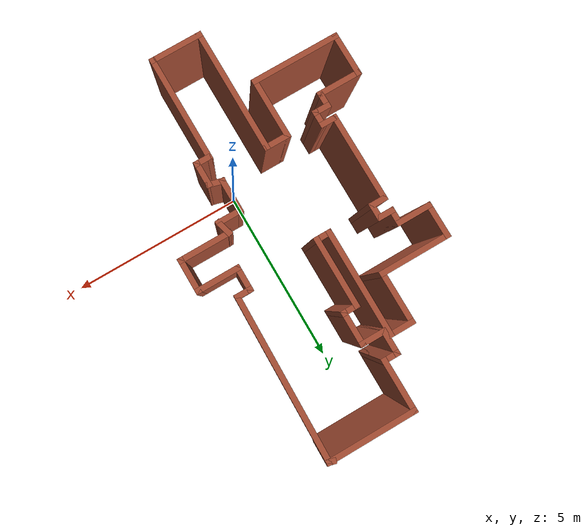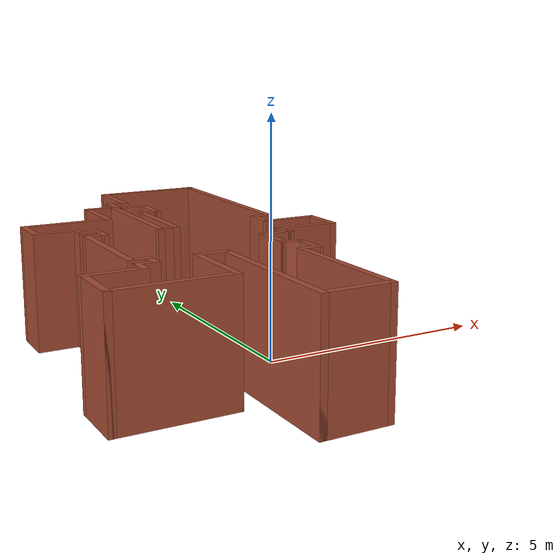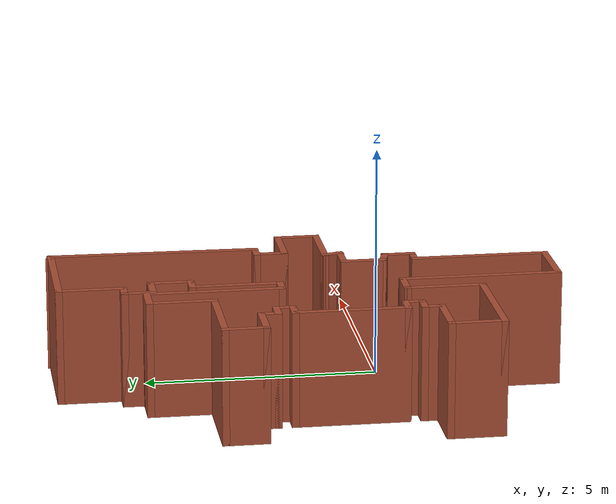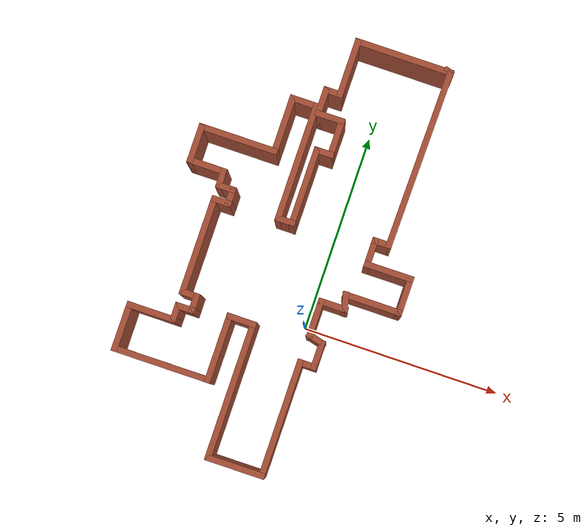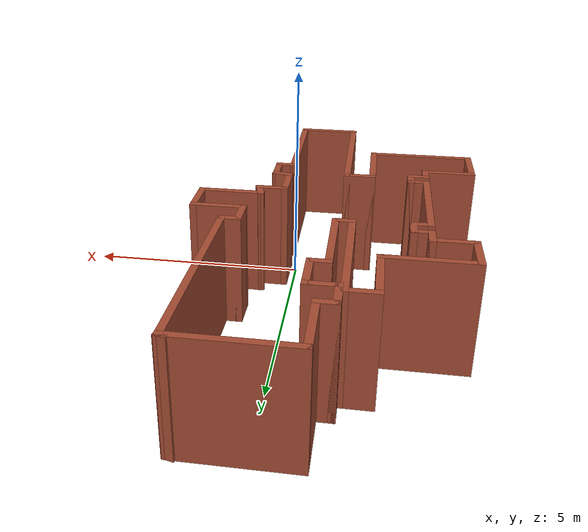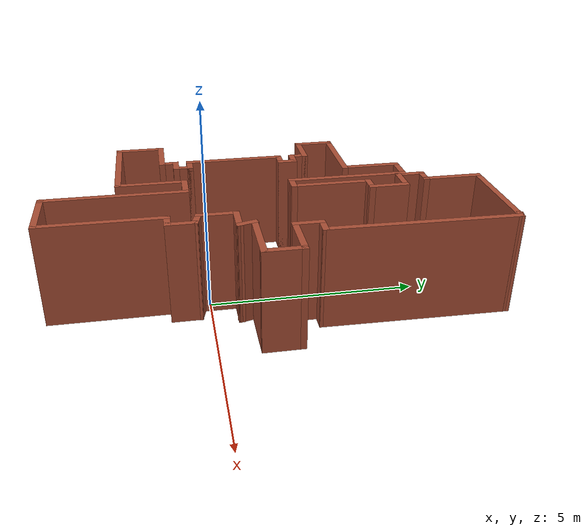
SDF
<?xml version='1.0'?>
<sdf version='1.6'>
  <model name='map_56'>
    <pose frame=''>-1.02847 1.59781 0 0 -0 0</pose>
    <link name='Wall_10'>
      <collision name='Wall_10_Collision'>
        <geometry>
          <box>
            <size>2 0.15 2.5</size>
          </box>
        </geometry>
        <pose frame=''>0 0 1.25 0 -0 0</pose>
      </collision>
      <visual name='Wall_10_Visual'>
        <pose frame=''>0 0 1.25 0 -0 0</pose>
        <geometry>
          <box>
            <size>2 0.15 2.5</size>
          </box>
        </geometry>
        <material>
          <script>
            <uri>file://media/materials/scripts/gazebo.material</uri>
            <name>Gazebo/Bricks</name>
          </script>
          <ambient>1 1 1 1</ambient>
        </material>
        <meta>
          <layer>0</layer>
        </meta>
      </visual>
      <pose frame=''>-0.03567 1.55363 0 0 -0 -1.5708</pose>
    </link>
    <link name='Wall_11'>
      <collision name='Wall_11_Collision'>
        <geometry>
          <box>
            <size>0.5 0.15 2.5</size>
          </box>
        </geometry>
        <pose frame=''>0 0 1.25 0 -0 0</pose>
      </collision>
      <visual name='Wall_11_Visual'>
        <pose frame=''>0 0 1.25 0 -0 0</pose>
        <geometry>
          <box>
            <size>0.5 0.15 2.5</size>
          </box>
        </geometry>
        <material>
          <script>
            <uri>file://media/materials/scripts/gazebo.material</uri>
            <name>Gazebo/Bricks</name>
          </script>
          <ambient>1 1 1 1</ambient>
        </material>
        <meta>
          <layer>0</layer>
        </meta>
      </visual>
      <pose frame=''>-0.21067 0.628631 0 0 -0 3.14159</pose>
    </link>
    <link name='Wall_14'>
      <collision name='Wall_14_Collision'>
        <geometry>
          <box>
            <size>3 0.15 2.5</size>
          </box>
        </geometry>
        <pose frame=''>0 0 1.25 0 -0 0</pose>
      </collision>
      <visual name='Wall_14_Visual'>
        <pose frame=''>0 0 1.25 0 -0 0</pose>
        <geometry>
          <box>
            <size>3 0.15 2.5</size>
          </box>
        </geometry>
        <material>
          <script>
            <uri>file://media/materials/scripts/gazebo.material</uri>
            <name>Gazebo/Bricks</name>
          </script>
          <ambient>1 1 1 1</ambient>
        </material>
        <meta>
          <layer>0</layer>
        </meta>
      </visual>
      <pose frame=''>-0.38567 2.05363 0 0 -0 1.5708</pose>
    </link>
    <link name='Wall_15'>
      <collision name='Wall_15_Collision'>
        <geometry>
          <box>
            <size>0.75 0.15 2.5</size>
          </box>
        </geometry>
        <pose frame=''>0 0 1.25 0 -0 0</pose>
      </collision>
      <visual name='Wall_15_Visual'>
        <pose frame=''>0 0 1.25 0 -0 0</pose>
        <geometry>
          <box>
            <size>0.75 0.15 2.5</size>
          </box>
        </geometry>
        <material>
          <script>
            <uri>file://media/materials/scripts/gazebo.material</uri>
            <name>Gazebo/Bricks</name>
          </script>
          <ambient>1 1 1 1</ambient>
        </material>
        <meta>
          <layer>0</layer>
        </meta>
      </visual>
      <pose frame=''>-0.68567 3.47863 0 0 -0 3.14159</pose>
    </link>
    <link name='Wall_16'>
      <collision name='Wall_16_Collision'>
        <geometry>
          <box>
            <size>1.5 0.15 2.5</size>
          </box>
        </geometry>
        <pose frame=''>0 0 1.25 0 -0 0</pose>
      </collision>
      <visual name='Wall_16_Visual'>
        <pose frame=''>0 0 1.25 0 -0 0</pose>
        <geometry>
          <box>
            <size>1.5 0.15 2.5</size>
          </box>
        </geometry>
        <material>
          <script>
            <uri>file://media/materials/scripts/gazebo.material</uri>
            <name>Gazebo/Bricks</name>
          </script>
          <ambient>1 1 1 1</ambient>
        </material>
        <meta>
          <layer>0</layer>
        </meta>
      </visual>
      <pose frame=''>-0.98567 2.80363 0 0 -0 -1.5708</pose>
    </link>
    <link name='Wall_17'>
      <collision name='Wall_17_Collision'>
        <geometry>
          <box>
            <size>2 0.15 2.5</size>
          </box>
        </geometry>
        <pose frame=''>0 0 1.25 0 -0 0</pose>
      </collision>
      <visual name='Wall_17_Visual'>
        <pose frame=''>0 0 1.25 0 -0 0</pose>
        <geometry>
          <box>
            <size>2 0.15 2.5</size>
          </box>
        </geometry>
        <material>
          <script>
            <uri>file://media/materials/scripts/gazebo.material</uri>
            <name>Gazebo/Bricks</name>
          </script>
          <ambient>1 1 1 1</ambient>
        </material>
        <meta>
          <layer>0</layer>
        </meta>
      </visual>
      <pose frame=''>-1.91067 2.12863 0 0 -0 3.14159</pose>
    </link>
    <link name='Wall_18'>
      <collision name='Wall_18_Collision'>
        <geometry>
          <box>
            <size>1 0.15 2.5</size>
          </box>
        </geometry>
        <pose frame=''>0 0 1.25 0 -0 0</pose>
      </collision>
      <visual name='Wall_18_Visual'>
        <pose frame=''>0 0 1.25 0 -0 0</pose>
        <geometry>
          <box>
            <size>1 0.15 2.5</size>
          </box>
        </geometry>
        <material>
          <script>
            <uri>file://media/materials/scripts/gazebo.material</uri>
            <name>Gazebo/Bricks</name>
          </script>
          <ambient>1 1 1 1</ambient>
        </material>
        <meta>
          <layer>0</layer>
        </meta>
      </visual>
      <pose frame=''>-2.83567 1.70363 0 0 -0 -1.5708</pose>
    </link>
    <link name='Wall_22'>
      <collision name='Wall_22_Collision'>
        <geometry>
          <box>
            <size>1 0.15 2.5</size>
          </box>
        </geometry>
        <pose frame=''>0 0 1.25 0 -0 0</pose>
      </collision>
      <visual name='Wall_22_Visual'>
        <pose frame=''>0 0 1.25 0 -0 0</pose>
        <geometry>
          <box>
            <size>1 0.15 2.5</size>
          </box>
        </geometry>
        <material>
          <script>
            <uri>file://media/materials/scripts/gazebo.material</uri>
            <name>Gazebo/Bricks</name>
          </script>
          <ambient>1 1 1 1</ambient>
        </material>
        <meta>
          <layer>0</layer>
        </meta>
      </visual>
      <pose frame=''>-2.41067 1.27863 0 0 -0 0</pose>
    </link>
    <link name='Wall_23'>
      <collision name='Wall_23_Collision'>
        <geometry>
          <box>
            <size>0.5 0.15 2.5</size>
          </box>
        </geometry>
        <pose frame=''>0 0 1.25 0 -0 0</pose>
      </collision>
      <visual name='Wall_23_Visual'>
        <pose frame=''>0 0 1.25 0 -0 0</pose>
        <geometry>
          <box>
            <size>0.5 0.15 2.5</size>
          </box>
        </geometry>
        <material>
          <script>
            <uri>file://media/materials/scripts/gazebo.material</uri>
            <name>Gazebo/Bricks</name>
          </script>
          <ambient>1 1 1 1</ambient>
        </material>
        <meta>
          <layer>0</layer>
        </meta>
      </visual>
      <pose frame=''>-1.98567 1.10363 0 0 -0 -1.5708</pose>
    </link>
    <link name='Wall_24'>
      <collision name='Wall_24_Collision'>
        <geometry>
          <box>
            <size>0.5 0.15 2.5</size>
          </box>
        </geometry>
        <pose frame=''>0 0 1.25 0 -0 0</pose>
      </collision>
      <visual name='Wall_24_Visual'>
        <pose frame=''>0 0 1.25 0 -0 0</pose>
        <geometry>
          <box>
            <size>0.5 0.15 2.5</size>
          </box>
        </geometry>
        <material>
          <script>
            <uri>file://media/materials/scripts/gazebo.material</uri>
            <name>Gazebo/Bricks</name>
          </script>
          <ambient>1 1 1 1</ambient>
        </material>
        <meta>
          <layer>0</layer>
        </meta>
      </visual>
      <pose frame=''>-1.81067 0.928631 0 0 -0 0</pose>
    </link>
    <link name='Wall_25'>
      <collision name='Wall_25_Collision'>
        <geometry>
          <box>
            <size>0.5 0.15 2.5</size>
          </box>
        </geometry>
        <pose frame=''>0 0 1.25 0 -0 0</pose>
      </collision>
      <visual name='Wall_25_Visual'>
        <pose frame=''>0 0 1.25 0 -0 0</pose>
        <geometry>
          <box>
            <size>0.5 0.15 2.5</size>
          </box>
        </geometry>
        <material>
          <script>
            <uri>file://media/materials/scripts/gazebo.material</uri>
            <name>Gazebo/Bricks</name>
          </script>
          <ambient>1 1 1 1</ambient>
        </material>
        <meta>
          <layer>0</layer>
        </meta>
      </visual>
      <pose frame=''>-1.63567 0.753631 0 0 -0 -1.5708</pose>
    </link>
    <link name='Wall_26'>
      <collision name='Wall_26_Collision'>
        <geometry>
          <box>
            <size>0.5 0.15 2.5</size>
          </box>
        </geometry>
        <pose frame=''>0 0 1.25 0 -0 0</pose>
      </collision>
      <visual name='Wall_26_Visual'>
        <pose frame=''>0 0 1.25 0 -0 0</pose>
        <geometry>
          <box>
            <size>0.5 0.15 2.5</size>
          </box>
        </geometry>
        <material>
          <script>
            <uri>file://media/materials/scripts/gazebo.material</uri>
            <name>Gazebo/Bricks</name>
          </script>
          <ambient>1 1 1 1</ambient>
        </material>
        <meta>
          <layer>0</layer>
        </meta>
      </visual>
      <pose frame=''>-1.81067 0.578631 0 0 -0 3.14159</pose>
    </link>
    <link name='Wall_27'>
      <collision name='Wall_27_Collision'>
        <geometry>
          <box>
            <size>2.5 0.15 2.5</size>
          </box>
        </geometry>
        <pose frame=''>0 0 1.25 0 -0 0</pose>
      </collision>
      <visual name='Wall_27_Visual'>
        <pose frame=''>0 0 1.25 0 -0 0</pose>
        <geometry>
          <box>
            <size>2.5 0.15 2.5</size>
          </box>
        </geometry>
        <material>
          <script>
            <uri>file://media/materials/scripts/gazebo.material</uri>
            <name>Gazebo/Bricks</name>
          </script>
          <ambient>1 1 1 1</ambient>
        </material>
        <meta>
          <layer>0</layer>
        </meta>
      </visual>
      <pose frame=''>-1.98567 -0.596369 0 0 -0 -1.5708</pose>
    </link>
    <link name='Wall_28'>
      <collision name='Wall_28_Collision'>
        <geometry>
          <box>
            <size>0.5 0.15 2.5</size>
          </box>
        </geometry>
        <pose frame=''>0 0 1.25 0 -0 0</pose>
      </collision>
      <visual name='Wall_28_Visual'>
        <pose frame=''>0 0 1.25 0 -0 0</pose>
        <geometry>
          <box>
            <size>0.5 0.15 2.5</size>
          </box>
        </geometry>
        <material>
          <script>
            <uri>file://media/materials/scripts/gazebo.material</uri>
            <name>Gazebo/Bricks</name>
          </script>
          <ambient>1 1 1 1</ambient>
        </material>
        <meta>
          <layer>0</layer>
        </meta>
      </visual>
      <pose frame=''>-1.81067 -1.77137 0 0 -0 0</pose>
    </link>
    <link name='Wall_29'>
      <collision name='Wall_29_Collision'>
        <geometry>
          <box>
            <size>0.5 0.15 2.5</size>
          </box>
        </geometry>
        <pose frame=''>0 0 1.25 0 -0 0</pose>
      </collision>
      <visual name='Wall_29_Visual'>
        <pose frame=''>0 0 1.25 0 -0 0</pose>
        <geometry>
          <box>
            <size>0.5 0.15 2.5</size>
          </box>
        </geometry>
        <material>
          <script>
            <uri>file://media/materials/scripts/gazebo.material</uri>
            <name>Gazebo/Bricks</name>
          </script>
          <ambient>1 1 1 1</ambient>
        </material>
        <meta>
          <layer>0</layer>
        </meta>
      </visual>
      <pose frame=''>-1.63567 -1.94637 0 0 -0 -1.5708</pose>
    </link>
    <link name='Wall_3'>
      <collision name='Wall_3_Collision'>
        <geometry>
          <box>
            <size>2.5 0.15 2.5</size>
          </box>
        </geometry>
        <pose frame=''>0 0 1.25 0 -0 0</pose>
      </collision>
      <visual name='Wall_3_Visual'>
        <pose frame=''>0 0 1.25 0 -0 0</pose>
        <geometry>
          <box>
            <size>2.5 0.15 2.5</size>
          </box>
        </geometry>
        <material>
          <script>
            <uri>file://media/materials/scripts/gazebo.material</uri>
            <name>Gazebo/Bricks</name>
          </script>
          <ambient>1 1 1 1</ambient>
        </material>
        <meta>
          <layer>0</layer>
        </meta>
      </visual>
      <pose frame=''>1.23933 5.27863 0 0 -0 3.14159</pose>
    </link>
    <link name='Wall_30'>
      <collision name='Wall_30_Collision'>
        <geometry>
          <box>
            <size>0.5 0.15 2.5</size>
          </box>
        </geometry>
        <pose frame=''>0 0 1.25 0 -0 0</pose>
      </collision>
      <visual name='Wall_30_Visual'>
        <pose frame=''>0 0 1.25 0 -0 0</pose>
        <geometry>
          <box>
            <size>0.5 0.15 2.5</size>
          </box>
        </geometry>
        <material>
          <script>
            <uri>file://media/materials/scripts/gazebo.material</uri>
            <name>Gazebo/Bricks</name>
          </script>
          <ambient>1 1 1 1</ambient>
        </material>
        <meta>
          <layer>0</layer>
        </meta>
      </visual>
      <pose frame=''>-1.81067 -2.12137 0 0 -0 3.14159</pose>
    </link>
    <link name='Wall_31'>
      <collision name='Wall_31_Collision'>
        <geometry>
          <box>
            <size>0.5 0.15 2.5</size>
          </box>
        </geometry>
        <pose frame=''>0 0 1.25 0 -0 0</pose>
      </collision>
      <visual name='Wall_31_Visual'>
        <pose frame=''>0 0 1.25 0 -0 0</pose>
        <geometry>
          <box>
            <size>0.5 0.15 2.5</size>
          </box>
        </geometry>
        <material>
          <script>
            <uri>file://media/materials/scripts/gazebo.material</uri>
            <name>Gazebo/Bricks</name>
          </script>
          <ambient>1 1 1 1</ambient>
        </material>
        <meta>
          <layer>0</layer>
        </meta>
      </visual>
      <pose frame=''>-1.98567 -2.29637 0 0 -0 -1.5708</pose>
    </link>
    <link name='Wall_32'>
      <collision name='Wall_32_Collision'>
        <geometry>
          <box>
            <size>1.25 0.15 2.5</size>
          </box>
        </geometry>
        <pose frame=''>0 0 1.25 0 -0 0</pose>
      </collision>
      <visual name='Wall_32_Visual'>
        <pose frame=''>0 0 1.25 0 -0 0</pose>
        <geometry>
          <box>
            <size>1.25 0.15 2.5</size>
          </box>
        </geometry>
        <material>
          <script>
            <uri>file://media/materials/scripts/gazebo.material</uri>
            <name>Gazebo/Bricks</name>
          </script>
          <ambient>1 1 1 1</ambient>
        </material>
        <meta>
          <layer>0</layer>
        </meta>
      </visual>
      <pose frame=''>-2.53567 -2.47137 0 0 -0 3.14159</pose>
    </link>
    <link name='Wall_33'>
      <collision name='Wall_33_Collision'>
        <geometry>
          <box>
            <size>1.25 0.15 2.5</size>
          </box>
        </geometry>
        <pose frame=''>0 0 1.25 0 -0 0</pose>
      </collision>
      <visual name='Wall_33_Visual'>
        <pose frame=''>0 0 1.25 0 -0 0</pose>
        <geometry>
          <box>
            <size>1.25 0.15 2.5</size>
          </box>
        </geometry>
        <material>
          <script>
            <uri>file://media/materials/scripts/gazebo.material</uri>
            <name>Gazebo/Bricks</name>
          </script>
          <ambient>1 1 1 1</ambient>
        </material>
        <meta>
          <layer>0</layer>
        </meta>
      </visual>
      <pose frame=''>-3.08567 -3.02137 0 0 -0 -1.5708</pose>
    </link>
    <link name='Wall_34'>
      <collision name='Wall_34_Collision'>
        <geometry>
          <box>
            <size>2.5 0.15 2.5</size>
          </box>
        </geometry>
        <pose frame=''>0 0 1.25 0 -0 0</pose>
      </collision>
      <visual name='Wall_34_Visual'>
        <pose frame=''>0 0 1.25 0 -0 0</pose>
        <geometry>
          <box>
            <size>2.5 0.15 2.5</size>
          </box>
        </geometry>
        <material>
          <script>
            <uri>file://media/materials/scripts/gazebo.material</uri>
            <name>Gazebo/Bricks</name>
          </script>
          <ambient>1 1 1 1</ambient>
        </material>
        <meta>
          <layer>0</layer>
        </meta>
      </visual>
      <pose frame=''>-1.91067 -3.57137 0 0 -0 0</pose>
    </link>
    <link name='Wall_35'>
      <collision name='Wall_35_Collision'>
        <geometry>
          <box>
            <size>1.75 0.15 2.5</size>
          </box>
        </geometry>
        <pose frame=''>0 0 1.25 0 -0 0</pose>
      </collision>
      <visual name='Wall_35_Visual'>
        <pose frame=''>0 0 1.25 0 -0 0</pose>
        <geometry>
          <box>
            <size>1.75 0.15 2.5</size>
          </box>
        </geometry>
        <material>
          <script>
            <uri>file://media/materials/scripts/gazebo.material</uri>
            <name>Gazebo/Bricks</name>
          </script>
          <ambient>1 1 1 1</ambient>
        </material>
        <meta>
          <layer>0</layer>
        </meta>
      </visual>
      <pose frame=''>-0.735669 -2.77137 0 0 -0 1.5708</pose>
    </link>
    <link name='Wall_36'>
      <collision name='Wall_36_Collision'>
        <geometry>
          <box>
            <size>0.75 0.15 2.5</size>
          </box>
        </geometry>
        <pose frame=''>0 0 1.25 0 -0 0</pose>
      </collision>
      <visual name='Wall_36_Visual'>
        <pose frame=''>0 0 1.25 0 -0 0</pose>
        <geometry>
          <box>
            <size>0.75 0.15 2.5</size>
          </box>
        </geometry>
        <material>
          <script>
            <uri>file://media/materials/scripts/gazebo.material</uri>
            <name>Gazebo/Bricks</name>
          </script>
          <ambient>1 1 1 1</ambient>
        </material>
        <meta>
          <layer>0</layer>
        </meta>
      </visual>
      <pose frame=''>-0.43567 -1.97137 0 0 -0 0</pose>
    </link>
    <link name='Wall_37'>
      <collision name='Wall_37_Collision'>
        <geometry>
          <box>
            <size>3.5 0.15 2.5</size>
          </box>
        </geometry>
        <pose frame=''>0 0 1.25 0 -0 0</pose>
      </collision>
      <visual name='Wall_37_Visual'>
        <pose frame=''>0 0 1.25 0 -0 0</pose>
        <geometry>
          <box>
            <size>3.5 0.15 2.5</size>
          </box>
        </geometry>
        <material>
          <script>
            <uri>file://media/materials/scripts/gazebo.material</uri>
            <name>Gazebo/Bricks</name>
          </script>
          <ambient>1 1 1 1</ambient>
        </material>
        <meta>
          <layer>0</layer>
        </meta>
      </visual>
      <pose frame=''>-0.13567 -3.64637 0 0 -0 -1.5708</pose>
    </link>
    <link name='Wall_38'>
      <collision name='Wall_38_Collision'>
        <geometry>
          <box>
            <size>1.5 0.15 2.5</size>
          </box>
        </geometry>
        <pose frame=''>0 0 1.25 0 -0 0</pose>
      </collision>
      <visual name='Wall_38_Visual'>
        <pose frame=''>0 0 1.25 0 -0 0</pose>
        <geometry>
          <box>
            <size>1.5 0.15 2.5</size>
          </box>
        </geometry>
        <material>
          <script>
            <uri>file://media/materials/scripts/gazebo.material</uri>
            <name>Gazebo/Bricks</name>
          </script>
          <ambient>1 1 1 1</ambient>
        </material>
        <meta>
          <layer>0</layer>
        </meta>
      </visual>
      <pose frame=''>0.53933 -5.32137 0 0 -0 0</pose>
    </link>
    <link name='Wall_39'>
      <collision name='Wall_39_Collision'>
        <geometry>
          <box>
            <size>3 0.15 2.5</size>
          </box>
        </geometry>
        <pose frame=''>0 0 1.25 0 -0 0</pose>
      </collision>
      <visual name='Wall_39_Visual'>
        <pose frame=''>0 0 1.25 0 -0 0</pose>
        <geometry>
          <box>
            <size>3 0.15 2.5</size>
          </box>
        </geometry>
        <material>
          <script>
            <uri>file://media/materials/scripts/gazebo.material</uri>
            <name>Gazebo/Bricks</name>
          </script>
          <ambient>1 1 1 1</ambient>
        </material>
        <meta>
          <layer>0</layer>
        </meta>
      </visual>
      <pose frame=''>1.21433 -3.89637 0 0 -0 1.5708</pose>
    </link>
    <link name='Wall_4'>
      <collision name='Wall_4_Collision'>
        <geometry>
          <box>
            <size>1.5 0.15 2.5</size>
          </box>
        </geometry>
        <pose frame=''>0 0 1.25 0 -0 0</pose>
      </collision>
      <visual name='Wall_4_Visual'>
        <pose frame=''>0 0 1.25 0 -0 0</pose>
        <geometry>
          <box>
            <size>1.5 0.15 2.5</size>
          </box>
        </geometry>
        <material>
          <script>
            <uri>file://media/materials/scripts/gazebo.material</uri>
            <name>Gazebo/Bricks</name>
          </script>
          <ambient>1 1 1 1</ambient>
        </material>
        <meta>
          <layer>0</layer>
        </meta>
      </visual>
      <pose frame=''>0.06433 4.60363 0 0 -0 -1.5708</pose>
    </link>
    <link name='Wall_40'>
      <collision name='Wall_40_Collision'>
        <geometry>
          <box>
            <size>0.5 0.15 2.5</size>
          </box>
        </geometry>
        <pose frame=''>0 0 1.25 0 -0 0</pose>
      </collision>
      <visual name='Wall_40_Visual'>
        <pose frame=''>0 0 1.25 0 -0 0</pose>
        <geometry>
          <box>
            <size>0.5 0.15 2.5</size>
          </box>
        </geometry>
        <material>
          <script>
            <uri>file://media/materials/scripts/gazebo.material</uri>
            <name>Gazebo/Bricks</name>
          </script>
          <ambient>1 1 1 1</ambient>
        </material>
        <meta>
          <layer>0</layer>
        </meta>
      </visual>
      <pose frame=''>1.38933 -2.47137 0 0 -0 0</pose>
    </link>
    <link name='Wall_41'>
      <collision name='Wall_41_Collision'>
        <geometry>
          <box>
            <size>0.75 0.15 2.5</size>
          </box>
        </geometry>
        <pose frame=''>0 0 1.25 0 -0 0</pose>
      </collision>
      <visual name='Wall_41_Visual'>
        <pose frame=''>0 0 1.25 0 -0 0</pose>
        <geometry>
          <box>
            <size>0.75 0.15 2.5</size>
          </box>
        </geometry>
        <material>
          <script>
            <uri>file://media/materials/scripts/gazebo.material</uri>
            <name>Gazebo/Bricks</name>
          </script>
          <ambient>1 1 1 1</ambient>
        </material>
        <meta>
          <layer>0</layer>
        </meta>
      </visual>
      <pose frame=''>1.56433 -2.17137 0 0 -0 1.5708</pose>
    </link>
    <link name='Wall_42'>
      <collision name='Wall_42_Collision'>
        <geometry>
          <box>
            <size>0.5 0.15 2.5</size>
          </box>
        </geometry>
        <pose frame=''>0 0 1.25 0 -0 0</pose>
      </collision>
      <visual name='Wall_42_Visual'>
        <pose frame=''>0 0 1.25 0 -0 0</pose>
        <geometry>
          <box>
            <size>0.5 0.15 2.5</size>
          </box>
        </geometry>
        <material>
          <script>
            <uri>file://media/materials/scripts/gazebo.material</uri>
            <name>Gazebo/Bricks</name>
          </script>
          <ambient>1 1 1 1</ambient>
        </material>
        <meta>
          <layer>0</layer>
        </meta>
      </visual>
      <pose frame=''>1.39529 -1.82607 0 0 -0 2.87979</pose>
    </link>
    <link name='Wall_43'>
      <collision name='Wall_43_Collision'>
        <geometry>
          <box>
            <size>1 0.15 2.5</size>
          </box>
        </geometry>
        <pose frame=''>0 0 1.25 0 -0 0</pose>
      </collision>
      <visual name='Wall_43_Visual'>
        <pose frame=''>0 0 1.25 0 -0 0</pose>
        <geometry>
          <box>
            <size>1 0.15 2.5</size>
          </box>
        </geometry>
        <material>
          <script>
            <uri>file://media/materials/scripts/gazebo.material</uri>
            <name>Gazebo/Bricks</name>
          </script>
          <ambient>1 1 1 1</ambient>
        </material>
        <meta>
          <layer>0</layer>
        </meta>
      </visual>
      <pose frame=''>1.22626 -1.35578 0 0 -0 1.5708</pose>
    </link>
    <link name='Wall_44'>
      <collision name='Wall_44_Collision'>
        <geometry>
          <box>
            <size>0.75 0.15 2.5</size>
          </box>
        </geometry>
        <pose frame=''>0 0 1.25 0 -0 0</pose>
      </collision>
      <visual name='Wall_44_Visual'>
        <pose frame=''>0 0 1.25 0 -0 0</pose>
        <geometry>
          <box>
            <size>0.75 0.15 2.5</size>
          </box>
        </geometry>
        <material>
          <script>
            <uri>file://media/materials/scripts/gazebo.material</uri>
            <name>Gazebo/Bricks</name>
          </script>
          <ambient>1 1 1 1</ambient>
        </material>
        <meta>
          <layer>0</layer>
        </meta>
      </visual>
      <pose frame=''>1.52626 -0.930782 0 0 -0 0</pose>
    </link>
    <link name='Wall_45'>
      <collision name='Wall_45_Collision'>
        <geometry>
          <box>
            <size>0.5 0.15 2.5</size>
          </box>
        </geometry>
        <pose frame=''>0 0 1.25 0 -0 0</pose>
      </collision>
      <visual name='Wall_45_Visual'>
        <pose frame=''>0 0 1.25 0 -0 0</pose>
        <geometry>
          <box>
            <size>0.5 0.15 2.5</size>
          </box>
        </geometry>
        <material>
          <script>
            <uri>file://media/materials/scripts/gazebo.material</uri>
            <name>Gazebo/Bricks</name>
          </script>
          <ambient>1 1 1 1</ambient>
        </material>
        <meta>
          <layer>0</layer>
        </meta>
      </visual>
      <pose frame=''>1.78096 -0.761745 0 0 -0 1.8326</pose>
    </link>
    <link name='Wall_46'>
      <collision name='Wall_46_Collision'>
        <geometry>
          <box>
            <size>1.5 0.15 2.5</size>
          </box>
        </geometry>
        <pose frame=''>0 0 1.25 0 -0 0</pose>
      </collision>
      <visual name='Wall_46_Visual'>
        <pose frame=''>0 0 1.25 0 -0 0</pose>
        <geometry>
          <box>
            <size>1.5 0.15 2.5</size>
          </box>
        </geometry>
        <material>
          <script>
            <uri>file://media/materials/scripts/gazebo.material</uri>
            <name>Gazebo/Bricks</name>
          </script>
          <ambient>1 1 1 1</ambient>
        </material>
        <meta>
          <layer>0</layer>
        </meta>
      </visual>
      <pose frame=''>2.41067 -0.592708 0 0 -0 0</pose>
    </link>
    <link name='Wall_47'>
      <collision name='Wall_47_Collision'>
        <geometry>
          <box>
            <size>1 0.15 2.5</size>
          </box>
        </geometry>
        <pose frame=''>0 0 1.25 0 -0 0</pose>
      </collision>
      <visual name='Wall_47_Visual'>
        <pose frame=''>0 0 1.25 0 -0 0</pose>
        <geometry>
          <box>
            <size>1 0.15 2.5</size>
          </box>
        </geometry>
        <material>
          <script>
            <uri>file://media/materials/scripts/gazebo.material</uri>
            <name>Gazebo/Bricks</name>
          </script>
          <ambient>1 1 1 1</ambient>
        </material>
        <meta>
          <layer>0</layer>
        </meta>
      </visual>
      <pose frame=''>3.08567 -0.167708 0 0 -0 1.5708</pose>
    </link>
    <link name='Wall_48'>
      <collision name='Wall_48_Collision'>
        <geometry>
          <box>
            <size>1.25 0.15 2.5</size>
          </box>
        </geometry>
        <pose frame=''>0 0 1.25 0 -0 0</pose>
      </collision>
      <visual name='Wall_48_Visual'>
        <pose frame=''>0 0 1.25 0 -0 0</pose>
        <geometry>
          <box>
            <size>1.25 0.15 2.5</size>
          </box>
        </geometry>
        <material>
          <script>
            <uri>file://media/materials/scripts/gazebo.material</uri>
            <name>Gazebo/Bricks</name>
          </script>
          <ambient>1 1 1 1</ambient>
        </material>
        <meta>
          <layer>0</layer>
        </meta>
      </visual>
      <pose frame=''>2.53567 0.257292 0 0 -0 3.14159</pose>
    </link>
    <link name='Wall_49'>
      <collision name='Wall_49_Collision'>
        <geometry>
          <box>
            <size>0.75 0.15 2.5</size>
          </box>
        </geometry>
        <pose frame=''>0 0 1.25 0 -0 0</pose>
      </collision>
      <visual name='Wall_49_Visual'>
        <pose frame=''>0 0 1.25 0 -0 0</pose>
        <geometry>
          <box>
            <size>0.75 0.15 2.5</size>
          </box>
        </geometry>
        <material>
          <script>
            <uri>file://media/materials/scripts/gazebo.material</uri>
            <name>Gazebo/Bricks</name>
          </script>
          <ambient>1 1 1 1</ambient>
        </material>
        <meta>
          <layer>0</layer>
        </meta>
      </visual>
      <pose frame=''>1.98567 0.557292 0 0 -0 1.5708</pose>
    </link>
    <link name='Wall_5'>
      <collision name='Wall_5_Collision'>
        <geometry>
          <box>
            <size>0.5 0.15 2.5</size>
          </box>
        </geometry>
        <pose frame=''>0 0 1.25 0 -0 0</pose>
      </collision>
      <visual name='Wall_5_Visual'>
        <pose frame=''>0 0 1.25 0 -0 0</pose>
        <geometry>
          <box>
            <size>0.5 0.15 2.5</size>
          </box>
        </geometry>
        <material>
          <script>
            <uri>file://media/materials/scripts/gazebo.material</uri>
            <name>Gazebo/Bricks</name>
          </script>
          <ambient>1 1 1 1</ambient>
        </material>
        <meta>
          <layer>0</layer>
        </meta>
      </visual>
      <pose frame=''>-0.110669 3.92863 0 0 -0 3.14159</pose>
    </link>
    <link name='Wall_50'>
      <collision name='Wall_50_Collision'>
        <geometry>
          <box>
            <size>0.5 0.15 2.5</size>
          </box>
        </geometry>
        <pose frame=''>0 0 1.25 0 -0 0</pose>
      </collision>
      <visual name='Wall_50_Visual'>
        <pose frame=''>0 0 1.25 0 -0 0</pose>
        <geometry>
          <box>
            <size>0.5 0.15 2.5</size>
          </box>
        </geometry>
        <material>
          <script>
            <uri>file://media/materials/scripts/gazebo.material</uri>
            <name>Gazebo/Bricks</name>
          </script>
          <ambient>1 1 1 1</ambient>
        </material>
        <meta>
          <layer>0</layer>
        </meta>
      </visual>
      <pose frame=''>2.16067 0.857292 0 0 -0 0</pose>
    </link>
    <link name='Wall_51'>
      <collision name='Wall_51_Collision'>
        <geometry>
          <box>
            <size>4.57204 0.15 2.5</size>
          </box>
        </geometry>
        <pose frame=''>0 0 1.25 0 -0 0</pose>
      </collision>
      <visual name='Wall_51_Visual'>
        <pose frame=''>0 0 1.25 0 -0 0</pose>
        <geometry>
          <box>
            <size>4.57204 0.15 2.5</size>
          </box>
        </geometry>
        <material>
          <script>
            <uri>file://media/materials/scripts/gazebo.material</uri>
            <name>Gazebo/Bricks</name>
          </script>
          <ambient>1 1 1 1</ambient>
        </material>
        <meta>
          <layer>0</layer>
        </meta>
      </visual>
      <pose frame=''>2.375 3.06796 0 0 -0 1.55301</pose>
    </link>
    <link name='Wall_52'>
      <collision name='Wall_52_Collision'>
        <geometry>
          <box>
            <size>0.25 0.15 2.5</size>
          </box>
        </geometry>
        <pose frame=''>0 0 1.25 0 -0 0</pose>
      </collision>
      <visual name='Wall_52_Visual'>
        <pose frame=''>0 0 1.25 0 -0 0</pose>
        <geometry>
          <box>
            <size>0.25 0.15 2.5</size>
          </box>
        </geometry>
        <material>
          <script>
            <uri>file://media/materials/scripts/gazebo.material</uri>
            <name>Gazebo/Bricks</name>
          </script>
          <ambient>1 1 1 1</ambient>
        </material>
        <meta>
          <layer>0</layer>
        </meta>
      </visual>
      <pose frame=''>2.36603 5.29157 0 0 -0 2.87979</pose>
    </link>
    <link name='Wall_6'>
      <collision name='Wall_6_Collision'>
        <geometry>
          <box>
            <size>0.75 0.15 2.5</size>
          </box>
        </geometry>
        <pose frame=''>0 0 1.25 0 -0 0</pose>
      </collision>
      <visual name='Wall_6_Visual'>
        <pose frame=''>0 0 1.25 0 -0 0</pose>
        <geometry>
          <box>
            <size>0.75 0.15 2.5</size>
          </box>
        </geometry>
        <material>
          <script>
            <uri>file://media/materials/scripts/gazebo.material</uri>
            <name>Gazebo/Bricks</name>
          </script>
          <ambient>1 1 1 1</ambient>
        </material>
        <meta>
          <layer>0</layer>
        </meta>
      </visual>
      <pose frame=''>-0.28567 3.62863 0 0 -0 -1.5708</pose>
    </link>
    <link name='Wall_7'>
      <collision name='Wall_7_Collision'>
        <geometry>
          <box>
            <size>0.75 0.15 2.5</size>
          </box>
        </geometry>
        <pose frame=''>0 0 1.25 0 -0 0</pose>
      </collision>
      <visual name='Wall_7_Visual'>
        <pose frame=''>0 0 1.25 0 -0 0</pose>
        <geometry>
          <box>
            <size>0.75 0.15 2.5</size>
          </box>
        </geometry>
        <material>
          <script>
            <uri>file://media/materials/scripts/gazebo.material</uri>
            <name>Gazebo/Bricks</name>
          </script>
          <ambient>1 1 1 1</ambient>
        </material>
        <meta>
          <layer>0</layer>
        </meta>
      </visual>
      <pose frame=''>0.014331 3.32863 0 0 -0 0</pose>
    </link>
    <link name='Wall_8'>
      <collision name='Wall_8_Collision'>
        <geometry>
          <box>
            <size>1 0.15 2.5</size>
          </box>
        </geometry>
        <pose frame=''>0 0 1.25 0 -0 0</pose>
      </collision>
      <visual name='Wall_8_Visual'>
        <pose frame=''>0 0 1.25 0 -0 0</pose>
        <geometry>
          <box>
            <size>1 0.15 2.5</size>
          </box>
        </geometry>
        <material>
          <script>
            <uri>file://media/materials/scripts/gazebo.material</uri>
            <name>Gazebo/Bricks</name>
          </script>
          <ambient>1 1 1 1</ambient>
        </material>
        <meta>
          <layer>0</layer>
        </meta>
      </visual>
      <pose frame=''>0.31433 2.90363 0 0 -0 -1.5708</pose>
    </link>
    <link name='Wall_9'>
      <collision name='Wall_9_Collision'>
        <geometry>
          <box>
            <size>0.5 0.15 2.5</size>
          </box>
        </geometry>
        <pose frame=''>0 0 1.25 0 -0 0</pose>
      </collision>
      <visual name='Wall_9_Visual'>
        <pose frame=''>0 0 1.25 0 -0 0</pose>
        <geometry>
          <box>
            <size>0.5 0.15 2.5</size>
          </box>
        </geometry>
        <material>
          <script>
            <uri>file://media/materials/scripts/gazebo.material</uri>
            <name>Gazebo/Bricks</name>
          </script>
          <ambient>1 1 1 1</ambient>
        </material>
        <meta>
          <layer>0</layer>
        </meta>
      </visual>
      <pose frame=''>0.13933 2.47863 0 0 -0 3.14159</pose>
    </link>
    <static>1</static>
  </model>
</sdf>
